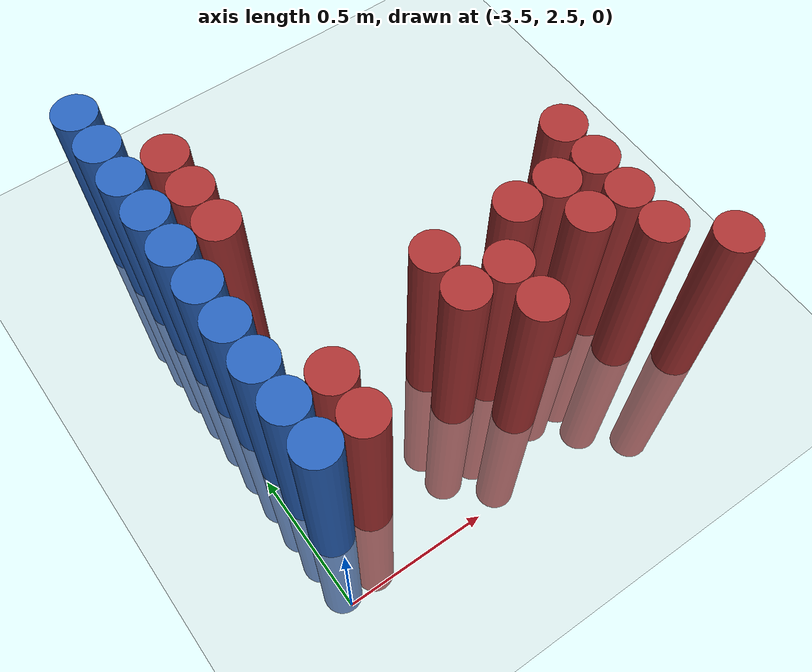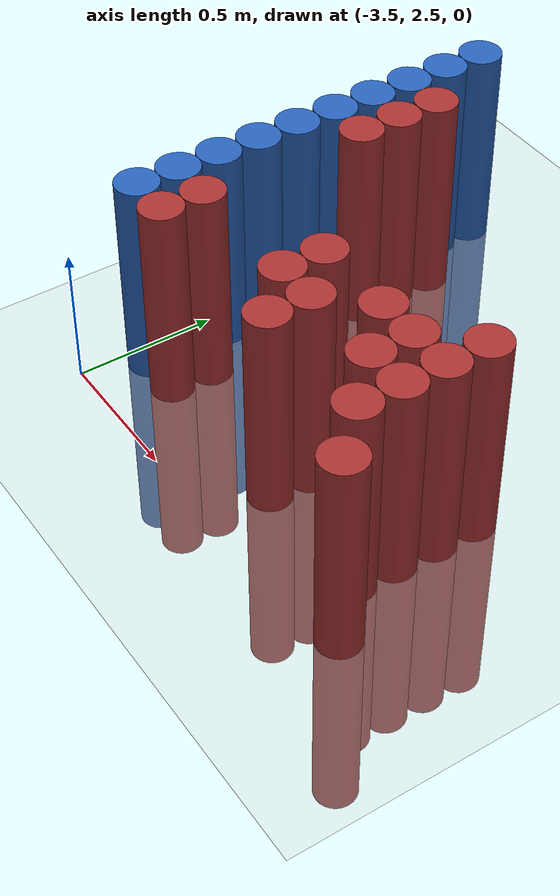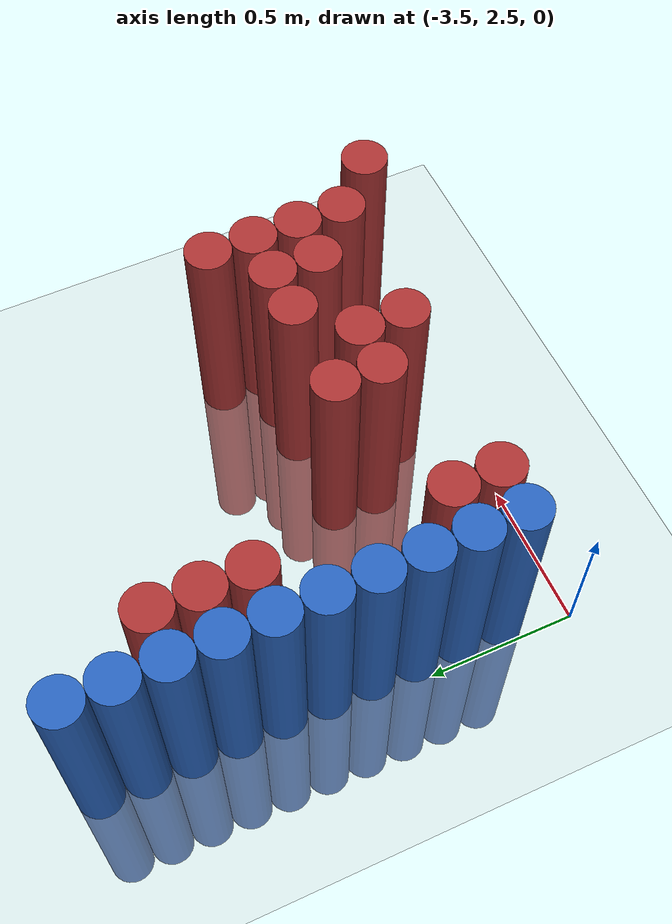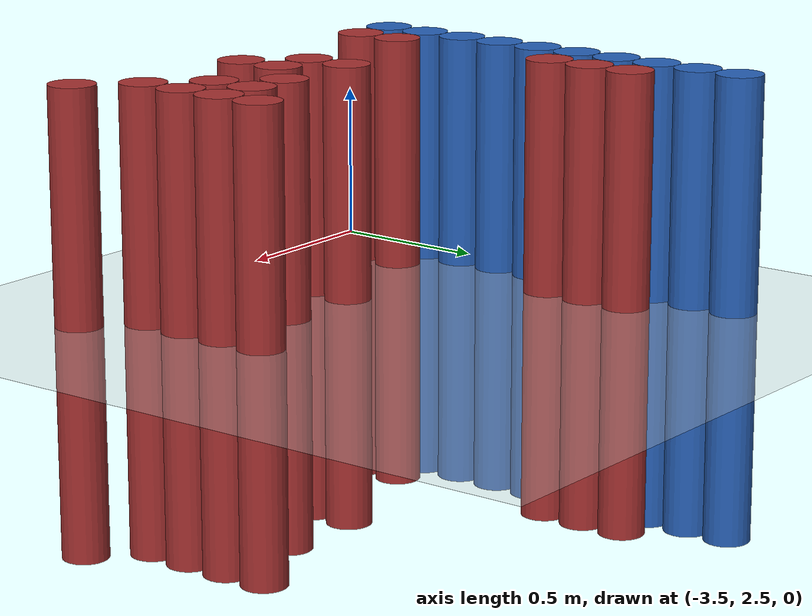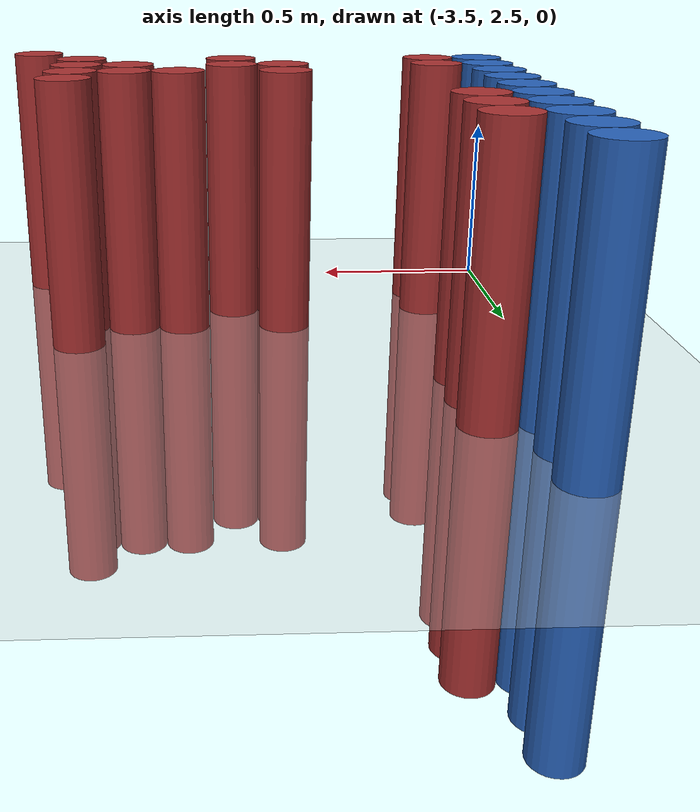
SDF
<sdf version="1.6">
 <world name="default">
  <model name="ground_plane">
   <static>1</static>
   <link name="link">
    <collision name="collision">
     <geometry><plane><normal>0 0 1</normal><size>100 100</size></plane></geometry>
     <surface><friction><ode><mu>100</mu><mu2>50</mu2></ode></friction></surface>
    </collision>
    <visual name="visual">
     <cast_shadows>0</cast_shadows>
     <geometry><plane><normal>0 0 1</normal><size>100 100</size></plane></geometry>
     <material>
      <script><uri>file://media/materials/scripts/gazebo.material</uri><name>Gazebo/Grey</name></script>
     </material>
    </visual>
   </link>
  </model>
  <model name="unit_cylinder_151">
   <static>1</static>
   <pose>-3.425000 2.725000 0.000000 0.000000 0.000000 0.000000</pose>
   <link name="link">
    <inertial>
     <mass>1</mass>
     <inertia><ixx>0.145833</ixx><ixy>0</ixy><ixz>0</ixz><iyy>0.145833</iyy><iyz>0</iyz><izz>0.125</izz></inertia>
    </inertial>
    <collision name="collision">
     <geometry><cylinder><radius>0.075000</radius><length>1.5</length></cylinder></geometry>
    </collision>
    <visual name="visual">
     <geometry><cylinder><radius>0.075000</radius><length>1.5</length></cylinder></geometry>
     <material>
      <ambient>0.152000 0.379000 0.720000 1</ambient>
      <diffuse>0.152000 0.379000 0.720000 1</diffuse>
     </material>
     <material>
      <script><name>Gazebo/Grey</name><uri>file://media/materials/scripts/gazebo.material</uri></script>
     </material>
    </visual>
   </link>
  </model>
  <model name="unit_cylinder_153">
   <static>1</static>
   <pose>-3.425000 2.875000 0.000000 0.000000 0.000000 0.000000</pose>
   <link name="link">
    <inertial>
     <mass>1</mass>
     <inertia><ixx>0.145833</ixx><ixy>0</ixy><ixz>0</ixz><iyy>0.145833</iyy><iyz>0</iyz><izz>0.125</izz></inertia>
    </inertial>
    <collision name="collision">
     <geometry><cylinder><radius>0.075000</radius><length>1.5</length></cylinder></geometry>
    </collision>
    <visual name="visual">
     <geometry><cylinder><radius>0.075000</radius><length>1.5</length></cylinder></geometry>
     <material>
      <ambient>0.152000 0.379000 0.720000 1</ambient>
      <diffuse>0.152000 0.379000 0.720000 1</diffuse>
     </material>
     <material>
      <script><name>Gazebo/Grey</name><uri>file://media/materials/scripts/gazebo.material</uri></script>
     </material>
    </visual>
   </link>
  </model>
  <model name="unit_cylinder_155">
   <static>1</static>
   <pose>-3.425000 3.025000 0.000000 0.000000 0.000000 0.000000</pose>
   <link name="link">
    <inertial>
     <mass>1</mass>
     <inertia><ixx>0.145833</ixx><ixy>0</ixy><ixz>0</ixz><iyy>0.145833</iyy><iyz>0</iyz><izz>0.125</izz></inertia>
    </inertial>
    <collision name="collision">
     <geometry><cylinder><radius>0.075000</radius><length>1.5</length></cylinder></geometry>
    </collision>
    <visual name="visual">
     <geometry><cylinder><radius>0.075000</radius><length>1.5</length></cylinder></geometry>
     <material>
      <ambient>0.152000 0.379000 0.720000 1</ambient>
      <diffuse>0.152000 0.379000 0.720000 1</diffuse>
     </material>
     <material>
      <script><name>Gazebo/Grey</name><uri>file://media/materials/scripts/gazebo.material</uri></script>
     </material>
    </visual>
   </link>
  </model>
  <model name="unit_cylinder_157">
   <static>1</static>
   <pose>-3.425000 3.175000 0.000000 0.000000 0.000000 0.000000</pose>
   <link name="link">
    <inertial>
     <mass>1</mass>
     <inertia><ixx>0.145833</ixx><ixy>0</ixy><ixz>0</ixz><iyy>0.145833</iyy><iyz>0</iyz><izz>0.125</izz></inertia>
    </inertial>
    <collision name="collision">
     <geometry><cylinder><radius>0.075000</radius><length>1.5</length></cylinder></geometry>
    </collision>
    <visual name="visual">
     <geometry><cylinder><radius>0.075000</radius><length>1.5</length></cylinder></geometry>
     <material>
      <ambient>0.152000 0.379000 0.720000 1</ambient>
      <diffuse>0.152000 0.379000 0.720000 1</diffuse>
     </material>
     <material>
      <script><name>Gazebo/Grey</name><uri>file://media/materials/scripts/gazebo.material</uri></script>
     </material>
    </visual>
   </link>
  </model>
  <model name="unit_cylinder_159">
   <static>1</static>
   <pose>-3.425000 3.325000 0.000000 0.000000 0.000000 0.000000</pose>
   <link name="link">
    <inertial>
     <mass>1</mass>
     <inertia><ixx>0.145833</ixx><ixy>0</ixy><ixz>0</ixz><iyy>0.145833</iyy><iyz>0</iyz><izz>0.125</izz></inertia>
    </inertial>
    <collision name="collision">
     <geometry><cylinder><radius>0.075000</radius><length>1.5</length></cylinder></geometry>
    </collision>
    <visual name="visual">
     <geometry><cylinder><radius>0.075000</radius><length>1.5</length></cylinder></geometry>
     <material>
      <ambient>0.152000 0.379000 0.720000 1</ambient>
      <diffuse>0.152000 0.379000 0.720000 1</diffuse>
     </material>
     <material>
      <script><name>Gazebo/Grey</name><uri>file://media/materials/scripts/gazebo.material</uri></script>
     </material>
    </visual>
   </link>
  </model>
  <model name="unit_cylinder_161">
   <static>1</static>
   <pose>-3.425000 3.475000 0.000000 0.000000 0.000000 0.000000</pose>
   <link name="link">
    <inertial>
     <mass>1</mass>
     <inertia><ixx>0.145833</ixx><ixy>0</ixy><ixz>0</ixz><iyy>0.145833</iyy><iyz>0</iyz><izz>0.125</izz></inertia>
    </inertial>
    <collision name="collision">
     <geometry><cylinder><radius>0.075000</radius><length>1.5</length></cylinder></geometry>
    </collision>
    <visual name="visual">
     <geometry><cylinder><radius>0.075000</radius><length>1.5</length></cylinder></geometry>
     <material>
      <ambient>0.152000 0.379000 0.720000 1</ambient>
      <diffuse>0.152000 0.379000 0.720000 1</diffuse>
     </material>
     <material>
      <script><name>Gazebo/Grey</name><uri>file://media/materials/scripts/gazebo.material</uri></script>
     </material>
    </visual>
   </link>
  </model>
  <model name="unit_cylinder_163">
   <static>1</static>
   <pose>-3.425000 3.625000 0.000000 0.000000 0.000000 0.000000</pose>
   <link name="link">
    <inertial>
     <mass>1</mass>
     <inertia><ixx>0.145833</ixx><ixy>0</ixy><ixz>0</ixz><iyy>0.145833</iyy><iyz>0</iyz><izz>0.125</izz></inertia>
    </inertial>
    <collision name="collision">
     <geometry><cylinder><radius>0.075000</radius><length>1.5</length></cylinder></geometry>
    </collision>
    <visual name="visual">
     <geometry><cylinder><radius>0.075000</radius><length>1.5</length></cylinder></geometry>
     <material>
      <ambient>0.152000 0.379000 0.720000 1</ambient>
      <diffuse>0.152000 0.379000 0.720000 1</diffuse>
     </material>
     <material>
      <script><name>Gazebo/Grey</name><uri>file://media/materials/scripts/gazebo.material</uri></script>
     </material>
    </visual>
   </link>
  </model>
  <model name="unit_cylinder_165">
   <static>1</static>
   <pose>-3.425000 3.775000 0.000000 0.000000 0.000000 0.000000</pose>
   <link name="link">
    <inertial>
     <mass>1</mass>
     <inertia><ixx>0.145833</ixx><ixy>0</ixy><ixz>0</ixz><iyy>0.145833</iyy><iyz>0</iyz><izz>0.125</izz></inertia>
    </inertial>
    <collision name="collision">
     <geometry><cylinder><radius>0.075000</radius><length>1.5</length></cylinder></geometry>
    </collision>
    <visual name="visual">
     <geometry><cylinder><radius>0.075000</radius><length>1.5</length></cylinder></geometry>
     <material>
      <ambient>0.152000 0.379000 0.720000 1</ambient>
      <diffuse>0.152000 0.379000 0.720000 1</diffuse>
     </material>
     <material>
      <script><name>Gazebo/Grey</name><uri>file://media/materials/scripts/gazebo.material</uri></script>
     </material>
    </visual>
   </link>
  </model>
  <model name="unit_cylinder_167">
   <static>1</static>
   <pose>-3.425000 3.925000 0.000000 0.000000 0.000000 0.000000</pose>
   <link name="link">
    <inertial>
     <mass>1</mass>
     <inertia><ixx>0.145833</ixx><ixy>0</ixy><ixz>0</ixz><iyy>0.145833</iyy><iyz>0</iyz><izz>0.125</izz></inertia>
    </inertial>
    <collision name="collision">
     <geometry><cylinder><radius>0.075000</radius><length>1.5</length></cylinder></geometry>
    </collision>
    <visual name="visual">
     <geometry><cylinder><radius>0.075000</radius><length>1.5</length></cylinder></geometry>
     <material>
      <ambient>0.152000 0.379000 0.720000 1</ambient>
      <diffuse>0.152000 0.379000 0.720000 1</diffuse>
     </material>
     <material>
      <script><name>Gazebo/Grey</name><uri>file://media/materials/scripts/gazebo.material</uri></script>
     </material>
    </visual>
   </link>
  </model>
  <model name="unit_cylinder_169">
   <static>1</static>
   <pose>-3.425000 4.075000 0.000000 0.000000 0.000000 0.000000</pose>
   <link name="link">
    <inertial>
     <mass>1</mass>
     <inertia><ixx>0.145833</ixx><ixy>0</ixy><ixz>0</ixz><iyy>0.145833</iyy><iyz>0</iyz><izz>0.125</izz></inertia>
    </inertial>
    <collision name="collision">
     <geometry><cylinder><radius>0.075000</radius><length>1.5</length></cylinder></geometry>
    </collision>
    <visual name="visual">
     <geometry><cylinder><radius>0.075000</radius><length>1.5</length></cylinder></geometry>
     <material>
      <ambient>0.152000 0.379000 0.720000 1</ambient>
      <diffuse>0.152000 0.379000 0.720000 1</diffuse>
     </material>
     <material>
      <script><name>Gazebo/Grey</name><uri>file://media/materials/scripts/gazebo.material</uri></script>
     </material>
    </visual>
   </link>
  </model>
  <model name="unit_cylinder_239">
   <static>1</static>
   <pose>-3.425000 2.725000 0.000000 0.000000 0.000000 0.000000</pose>
   <link name="link">
    <inertial>
     <mass>1</mass>
     <inertia><ixx>0.145833</ixx><ixy>0</ixy><ixz>0</ixz><iyy>0.145833</iyy><iyz>0</iyz><izz>0.125</izz></inertia>
    </inertial>
    <collision name="collision">
     <geometry><cylinder><radius>0.075000</radius><length>1.5</length></cylinder></geometry>
    </collision>
    <visual name="visual">
     <geometry><cylinder><radius>0.075000</radius><length>1.5</length></cylinder></geometry>
     <material>
      <ambient>0.152000 0.379000 0.720000 1</ambient>
      <diffuse>0.152000 0.379000 0.720000 1</diffuse>
     </material>
     <material>
      <script><name>Gazebo/Grey</name><uri>file://media/materials/scripts/gazebo.material</uri></script>
     </material>
    </visual>
   </link>
  </model>
  <model name="unit_cylinder_240">
   <static>1</static>
   <pose>-3.425000 2.875000 0.000000 0.000000 0.000000 0.000000</pose>
   <link name="link">
    <inertial>
     <mass>1</mass>
     <inertia><ixx>0.145833</ixx><ixy>0</ixy><ixz>0</ixz><iyy>0.145833</iyy><iyz>0</iyz><izz>0.125</izz></inertia>
    </inertial>
    <collision name="collision">
     <geometry><cylinder><radius>0.075000</radius><length>1.5</length></cylinder></geometry>
    </collision>
    <visual name="visual">
     <geometry><cylinder><radius>0.075000</radius><length>1.5</length></cylinder></geometry>
     <material>
      <ambient>0.152000 0.379000 0.720000 1</ambient>
      <diffuse>0.152000 0.379000 0.720000 1</diffuse>
     </material>
     <material>
      <script><name>Gazebo/Grey</name><uri>file://media/materials/scripts/gazebo.material</uri></script>
     </material>
    </visual>
   </link>
  </model>
  <model name="unit_cylinder_241">
   <static>1</static>
   <pose>-3.425000 3.025000 0.000000 0.000000 0.000000 0.000000</pose>
   <link name="link">
    <inertial>
     <mass>1</mass>
     <inertia><ixx>0.145833</ixx><ixy>0</ixy><ixz>0</ixz><iyy>0.145833</iyy><iyz>0</iyz><izz>0.125</izz></inertia>
    </inertial>
    <collision name="collision">
     <geometry><cylinder><radius>0.075000</radius><length>1.5</length></cylinder></geometry>
    </collision>
    <visual name="visual">
     <geometry><cylinder><radius>0.075000</radius><length>1.5</length></cylinder></geometry>
     <material>
      <ambient>0.152000 0.379000 0.720000 1</ambient>
      <diffuse>0.152000 0.379000 0.720000 1</diffuse>
     </material>
     <material>
      <script><name>Gazebo/Grey</name><uri>file://media/materials/scripts/gazebo.material</uri></script>
     </material>
    </visual>
   </link>
  </model>
  <model name="unit_cylinder_242">
   <static>1</static>
   <pose>-3.425000 3.175000 0.000000 0.000000 0.000000 0.000000</pose>
   <link name="link">
    <inertial>
     <mass>1</mass>
     <inertia><ixx>0.145833</ixx><ixy>0</ixy><ixz>0</ixz><iyy>0.145833</iyy><iyz>0</iyz><izz>0.125</izz></inertia>
    </inertial>
    <collision name="collision">
     <geometry><cylinder><radius>0.075000</radius><length>1.5</length></cylinder></geometry>
    </collision>
    <visual name="visual">
     <geometry><cylinder><radius>0.075000</radius><length>1.5</length></cylinder></geometry>
     <material>
      <ambient>0.152000 0.379000 0.720000 1</ambient>
      <diffuse>0.152000 0.379000 0.720000 1</diffuse>
     </material>
     <material>
      <script><name>Gazebo/Grey</name><uri>file://media/materials/scripts/gazebo.material</uri></script>
     </material>
    </visual>
   </link>
  </model>
  <model name="unit_cylinder_243">
   <static>1</static>
   <pose>-3.425000 3.325000 0.000000 0.000000 0.000000 0.000000</pose>
   <link name="link">
    <inertial>
     <mass>1</mass>
     <inertia><ixx>0.145833</ixx><ixy>0</ixy><ixz>0</ixz><iyy>0.145833</iyy><iyz>0</iyz><izz>0.125</izz></inertia>
    </inertial>
    <collision name="collision">
     <geometry><cylinder><radius>0.075000</radius><length>1.5</length></cylinder></geometry>
    </collision>
    <visual name="visual">
     <geometry><cylinder><radius>0.075000</radius><length>1.5</length></cylinder></geometry>
     <material>
      <ambient>0.152000 0.379000 0.720000 1</ambient>
      <diffuse>0.152000 0.379000 0.720000 1</diffuse>
     </material>
     <material>
      <script><name>Gazebo/Grey</name><uri>file://media/materials/scripts/gazebo.material</uri></script>
     </material>
    </visual>
   </link>
  </model>
  <model name="unit_cylinder_244">
   <static>1</static>
   <pose>-3.425000 3.475000 0.000000 0.000000 0.000000 0.000000</pose>
   <link name="link">
    <inertial>
     <mass>1</mass>
     <inertia><ixx>0.145833</ixx><ixy>0</ixy><ixz>0</ixz><iyy>0.145833</iyy><iyz>0</iyz><izz>0.125</izz></inertia>
    </inertial>
    <collision name="collision">
     <geometry><cylinder><radius>0.075000</radius><length>1.5</length></cylinder></geometry>
    </collision>
    <visual name="visual">
     <geometry><cylinder><radius>0.075000</radius><length>1.5</length></cylinder></geometry>
     <material>
      <ambient>0.152000 0.379000 0.720000 1</ambient>
      <diffuse>0.152000 0.379000 0.720000 1</diffuse>
     </material>
     <material>
      <script><name>Gazebo/Grey</name><uri>file://media/materials/scripts/gazebo.material</uri></script>
     </material>
    </visual>
   </link>
  </model>
  <model name="unit_cylinder_245">
   <static>1</static>
   <pose>-3.425000 3.625000 0.000000 0.000000 0.000000 0.000000</pose>
   <link name="link">
    <inertial>
     <mass>1</mass>
     <inertia><ixx>0.145833</ixx><ixy>0</ixy><ixz>0</ixz><iyy>0.145833</iyy><iyz>0</iyz><izz>0.125</izz></inertia>
    </inertial>
    <collision name="collision">
     <geometry><cylinder><radius>0.075000</radius><length>1.5</length></cylinder></geometry>
    </collision>
    <visual name="visual">
     <geometry><cylinder><radius>0.075000</radius><length>1.5</length></cylinder></geometry>
     <material>
      <ambient>0.152000 0.379000 0.720000 1</ambient>
      <diffuse>0.152000 0.379000 0.720000 1</diffuse>
     </material>
     <material>
      <script><name>Gazebo/Grey</name><uri>file://media/materials/scripts/gazebo.material</uri></script>
     </material>
    </visual>
   </link>
  </model>
  <model name="unit_cylinder_246">
   <static>1</static>
   <pose>-3.425000 3.775000 0.000000 0.000000 0.000000 0.000000</pose>
   <link name="link">
    <inertial>
     <mass>1</mass>
     <inertia><ixx>0.145833</ixx><ixy>0</ixy><ixz>0</ixz><iyy>0.145833</iyy><iyz>0</iyz><izz>0.125</izz></inertia>
    </inertial>
    <collision name="collision">
     <geometry><cylinder><radius>0.075000</radius><length>1.5</length></cylinder></geometry>
    </collision>
    <visual name="visual">
     <geometry><cylinder><radius>0.075000</radius><length>1.5</length></cylinder></geometry>
     <material>
      <ambient>0.152000 0.379000 0.720000 1</ambient>
      <diffuse>0.152000 0.379000 0.720000 1</diffuse>
     </material>
     <material>
      <script><name>Gazebo/Grey</name><uri>file://media/materials/scripts/gazebo.material</uri></script>
     </material>
    </visual>
   </link>
  </model>
  <model name="unit_cylinder_247">
   <static>1</static>
   <pose>-3.425000 3.925000 0.000000 0.000000 0.000000 0.000000</pose>
   <link name="link">
    <inertial>
     <mass>1</mass>
     <inertia><ixx>0.145833</ixx><ixy>0</ixy><ixz>0</ixz><iyy>0.145833</iyy><iyz>0</iyz><izz>0.125</izz></inertia>
    </inertial>
    <collision name="collision">
     <geometry><cylinder><radius>0.075000</radius><length>1.5</length></cylinder></geometry>
    </collision>
    <visual name="visual">
     <geometry><cylinder><radius>0.075000</radius><length>1.5</length></cylinder></geometry>
     <material>
      <ambient>0.152000 0.379000 0.720000 1</ambient>
      <diffuse>0.152000 0.379000 0.720000 1</diffuse>
     </material>
     <material>
      <script><name>Gazebo/Grey</name><uri>file://media/materials/scripts/gazebo.material</uri></script>
     </material>
    </visual>
   </link>
  </model>
  <model name="unit_cylinder_266">
   <static>1</static>
   <pose>-3.275000 2.725000 0.000000 0.000000 0.000000 0.000000</pose>
   <link name="link">
    <inertial>
     <mass>1</mass>
     <inertia><ixx>0.145833</ixx><ixy>0</ixy><ixz>0</ixz><iyy>0.145833</iyy><iyz>0</iyz><izz>0.125</izz></inertia>
    </inertial>
    <collision name="collision">
     <geometry><cylinder><radius>0.075000</radius><length>1.5</length></cylinder></geometry>
    </collision>
    <visual name="visual">
     <geometry><cylinder><radius>0.075000</radius><length>1.5</length></cylinder></geometry>
     <material>
      <ambient>0.648000 0.192000 0.192000 1</ambient>
      <diffuse>0.648000 0.192000 0.192000 1</diffuse>
     </material>
     <material>
      <script><name>Gazebo/Grey</name><uri>file://media/materials/scripts/gazebo.material</uri></script>
     </material>
    </visual>
   </link>
  </model>
  <model name="unit_cylinder_267">
   <static>1</static>
   <pose>-3.275000 2.875000 0.000000 0.000000 0.000000 0.000000</pose>
   <link name="link">
    <inertial>
     <mass>1</mass>
     <inertia><ixx>0.145833</ixx><ixy>0</ixy><ixz>0</ixz><iyy>0.145833</iyy><iyz>0</iyz><izz>0.125</izz></inertia>
    </inertial>
    <collision name="collision">
     <geometry><cylinder><radius>0.075000</radius><length>1.5</length></cylinder></geometry>
    </collision>
    <visual name="visual">
     <geometry><cylinder><radius>0.075000</radius><length>1.5</length></cylinder></geometry>
     <material>
      <ambient>0.648000 0.192000 0.192000 1</ambient>
      <diffuse>0.648000 0.192000 0.192000 1</diffuse>
     </material>
     <material>
      <script><name>Gazebo/Grey</name><uri>file://media/materials/scripts/gazebo.material</uri></script>
     </material>
    </visual>
   </link>
  </model>
  <model name="unit_cylinder_268">
   <static>1</static>
   <pose>-3.275000 3.475000 0.000000 0.000000 0.000000 0.000000</pose>
   <link name="link">
    <inertial>
     <mass>1</mass>
     <inertia><ixx>0.145833</ixx><ixy>0</ixy><ixz>0</ixz><iyy>0.145833</iyy><iyz>0</iyz><izz>0.125</izz></inertia>
    </inertial>
    <collision name="collision">
     <geometry><cylinder><radius>0.075000</radius><length>1.5</length></cylinder></geometry>
    </collision>
    <visual name="visual">
     <geometry><cylinder><radius>0.075000</radius><length>1.5</length></cylinder></geometry>
     <material>
      <ambient>0.648000 0.192000 0.192000 1</ambient>
      <diffuse>0.648000 0.192000 0.192000 1</diffuse>
     </material>
     <material>
      <script><name>Gazebo/Grey</name><uri>file://media/materials/scripts/gazebo.material</uri></script>
     </material>
    </visual>
   </link>
  </model>
  <model name="unit_cylinder_269">
   <static>1</static>
   <pose>-3.275000 3.625000 0.000000 0.000000 0.000000 0.000000</pose>
   <link name="link">
    <inertial>
     <mass>1</mass>
     <inertia><ixx>0.145833</ixx><ixy>0</ixy><ixz>0</ixz><iyy>0.145833</iyy><iyz>0</iyz><izz>0.125</izz></inertia>
    </inertial>
    <collision name="collision">
     <geometry><cylinder><radius>0.075000</radius><length>1.5</length></cylinder></geometry>
    </collision>
    <visual name="visual">
     <geometry><cylinder><radius>0.075000</radius><length>1.5</length></cylinder></geometry>
     <material>
      <ambient>0.648000 0.192000 0.192000 1</ambient>
      <diffuse>0.648000 0.192000 0.192000 1</diffuse>
     </material>
     <material>
      <script><name>Gazebo/Grey</name><uri>file://media/materials/scripts/gazebo.material</uri></script>
     </material>
    </visual>
   </link>
  </model>
  <model name="unit_cylinder_270">
   <static>1</static>
   <pose>-3.275000 3.775000 0.000000 0.000000 0.000000 0.000000</pose>
   <link name="link">
    <inertial>
     <mass>1</mass>
     <inertia><ixx>0.145833</ixx><ixy>0</ixy><ixz>0</ixz><iyy>0.145833</iyy><iyz>0</iyz><izz>0.125</izz></inertia>
    </inertial>
    <collision name="collision">
     <geometry><cylinder><radius>0.075000</radius><length>1.5</length></cylinder></geometry>
    </collision>
    <visual name="visual">
     <geometry><cylinder><radius>0.075000</radius><length>1.5</length></cylinder></geometry>
     <material>
      <ambient>0.648000 0.192000 0.192000 1</ambient>
      <diffuse>0.648000 0.192000 0.192000 1</diffuse>
     </material>
     <material>
      <script><name>Gazebo/Grey</name><uri>file://media/materials/scripts/gazebo.material</uri></script>
     </material>
    </visual>
   </link>
  </model>
  <model name="unit_cylinder_285">
   <static>1</static>
   <pose>-2.825000 2.875000 0.000000 0.000000 0.000000 0.000000</pose>
   <link name="link">
    <inertial>
     <mass>1</mass>
     <inertia><ixx>0.145833</ixx><ixy>0</ixy><ixz>0</ixz><iyy>0.145833</iyy><iyz>0</iyz><izz>0.125</izz></inertia>
    </inertial>
    <collision name="collision">
     <geometry><cylinder><radius>0.075000</radius><length>1.5</length></cylinder></geometry>
    </collision>
    <visual name="visual">
     <geometry><cylinder><radius>0.075000</radius><length>1.5</length></cylinder></geometry>
     <material>
      <ambient>0.648000 0.192000 0.192000 1</ambient>
      <diffuse>0.648000 0.192000 0.192000 1</diffuse>
     </material>
     <material>
      <script><name>Gazebo/Grey</name><uri>file://media/materials/scripts/gazebo.material</uri></script>
     </material>
    </visual>
   </link>
  </model>
  <model name="unit_cylinder_286">
   <static>1</static>
   <pose>-2.825000 3.025000 0.000000 0.000000 0.000000 0.000000</pose>
   <link name="link">
    <inertial>
     <mass>1</mass>
     <inertia><ixx>0.145833</ixx><ixy>0</ixy><ixz>0</ixz><iyy>0.145833</iyy><iyz>0</iyz><izz>0.125</izz></inertia>
    </inertial>
    <collision name="collision">
     <geometry><cylinder><radius>0.075000</radius><length>1.5</length></cylinder></geometry>
    </collision>
    <visual name="visual">
     <geometry><cylinder><radius>0.075000</radius><length>1.5</length></cylinder></geometry>
     <material>
      <ambient>0.648000 0.192000 0.192000 1</ambient>
      <diffuse>0.648000 0.192000 0.192000 1</diffuse>
     </material>
     <material>
      <script><name>Gazebo/Grey</name><uri>file://media/materials/scripts/gazebo.material</uri></script>
     </material>
    </visual>
   </link>
  </model>
  <model name="unit_cylinder_295">
   <static>1</static>
   <pose>-2.675000 2.725000 0.000000 0.000000 0.000000 0.000000</pose>
   <link name="link">
    <inertial>
     <mass>1</mass>
     <inertia><ixx>0.145833</ixx><ixy>0</ixy><ixz>0</ixz><iyy>0.145833</iyy><iyz>0</iyz><izz>0.125</izz></inertia>
    </inertial>
    <collision name="collision">
     <geometry><cylinder><radius>0.075000</radius><length>1.5</length></cylinder></geometry>
    </collision>
    <visual name="visual">
     <geometry><cylinder><radius>0.075000</radius><length>1.5</length></cylinder></geometry>
     <material>
      <ambient>0.648000 0.192000 0.192000 1</ambient>
      <diffuse>0.648000 0.192000 0.192000 1</diffuse>
     </material>
     <material>
      <script><name>Gazebo/Grey</name><uri>file://media/materials/scripts/gazebo.material</uri></script>
     </material>
    </visual>
   </link>
  </model>
  <model name="unit_cylinder_296">
   <static>1</static>
   <pose>-2.675000 2.875000 0.000000 0.000000 0.000000 0.000000</pose>
   <link name="link">
    <inertial>
     <mass>1</mass>
     <inertia><ixx>0.145833</ixx><ixy>0</ixy><ixz>0</ixz><iyy>0.145833</iyy><iyz>0</iyz><izz>0.125</izz></inertia>
    </inertial>
    <collision name="collision">
     <geometry><cylinder><radius>0.075000</radius><length>1.5</length></cylinder></geometry>
    </collision>
    <visual name="visual">
     <geometry><cylinder><radius>0.075000</radius><length>1.5</length></cylinder></geometry>
     <material>
      <ambient>0.648000 0.192000 0.192000 1</ambient>
      <diffuse>0.648000 0.192000 0.192000 1</diffuse>
     </material>
     <material>
      <script><name>Gazebo/Grey</name><uri>file://media/materials/scripts/gazebo.material</uri></script>
     </material>
    </visual>
   </link>
  </model>
  <model name="unit_cylinder_303">
   <static>1</static>
   <pose>-2.525000 3.025000 0.000000 0.000000 0.000000 0.000000</pose>
   <link name="link">
    <inertial>
     <mass>1</mass>
     <inertia><ixx>0.145833</ixx><ixy>0</ixy><ixz>0</ixz><iyy>0.145833</iyy><iyz>0</iyz><izz>0.125</izz></inertia>
    </inertial>
    <collision name="collision">
     <geometry><cylinder><radius>0.075000</radius><length>1.5</length></cylinder></geometry>
    </collision>
    <visual name="visual">
     <geometry><cylinder><radius>0.075000</radius><length>1.5</length></cylinder></geometry>
     <material>
      <ambient>0.648000 0.192000 0.192000 1</ambient>
      <diffuse>0.648000 0.192000 0.192000 1</diffuse>
     </material>
     <material>
      <script><name>Gazebo/Grey</name><uri>file://media/materials/scripts/gazebo.material</uri></script>
     </material>
    </visual>
   </link>
  </model>
  <model name="unit_cylinder_310">
   <static>1</static>
   <pose>-2.375000 2.875000 0.000000 0.000000 0.000000 0.000000</pose>
   <link name="link">
    <inertial>
     <mass>1</mass>
     <inertia><ixx>0.145833</ixx><ixy>0</ixy><ixz>0</ixz><iyy>0.145833</iyy><iyz>0</iyz><izz>0.125</izz></inertia>
    </inertial>
    <collision name="collision">
     <geometry><cylinder><radius>0.075000</radius><length>1.5</length></cylinder></geometry>
    </collision>
    <visual name="visual">
     <geometry><cylinder><radius>0.075000</radius><length>1.5</length></cylinder></geometry>
     <material>
      <ambient>0.648000 0.192000 0.192000 1</ambient>
      <diffuse>0.648000 0.192000 0.192000 1</diffuse>
     </material>
     <material>
      <script><name>Gazebo/Grey</name><uri>file://media/materials/scripts/gazebo.material</uri></script>
     </material>
    </visual>
   </link>
  </model>
  <model name="unit_cylinder_311">
   <static>1</static>
   <pose>-2.375000 3.025000 0.000000 0.000000 0.000000 0.000000</pose>
   <link name="link">
    <inertial>
     <mass>1</mass>
     <inertia><ixx>0.145833</ixx><ixy>0</ixy><ixz>0</ixz><iyy>0.145833</iyy><iyz>0</iyz><izz>0.125</izz></inertia>
    </inertial>
    <collision name="collision">
     <geometry><cylinder><radius>0.075000</radius><length>1.5</length></cylinder></geometry>
    </collision>
    <visual name="visual">
     <geometry><cylinder><radius>0.075000</radius><length>1.5</length></cylinder></geometry>
     <material>
      <ambient>0.648000 0.192000 0.192000 1</ambient>
      <diffuse>0.648000 0.192000 0.192000 1</diffuse>
     </material>
     <material>
      <script><name>Gazebo/Grey</name><uri>file://media/materials/scripts/gazebo.material</uri></script>
     </material>
    </visual>
   </link>
  </model>
  <model name="unit_cylinder_312">
   <static>1</static>
   <pose>-2.225000 2.725000 0.000000 0.000000 0.000000 0.000000</pose>
   <link name="link">
    <inertial>
     <mass>1</mass>
     <inertia><ixx>0.145833</ixx><ixy>0</ixy><ixz>0</ixz><iyy>0.145833</iyy><iyz>0</iyz><izz>0.125</izz></inertia>
    </inertial>
    <collision name="collision">
     <geometry><cylinder><radius>0.075000</radius><length>1.5</length></cylinder></geometry>
    </collision>
    <visual name="visual">
     <geometry><cylinder><radius>0.075000</radius><length>1.5</length></cylinder></geometry>
     <material>
      <ambient>0.648000 0.192000 0.192000 1</ambient>
      <diffuse>0.648000 0.192000 0.192000 1</diffuse>
     </material>
     <material>
      <script><name>Gazebo/Grey</name><uri>file://media/materials/scripts/gazebo.material</uri></script>
     </material>
    </visual>
   </link>
  </model>
  <model name="unit_cylinder_313">
   <static>1</static>
   <pose>-2.225000 2.875000 0.000000 0.000000 0.000000 0.000000</pose>
   <link name="link">
    <inertial>
     <mass>1</mass>
     <inertia><ixx>0.145833</ixx><ixy>0</ixy><ixz>0</ixz><iyy>0.145833</iyy><iyz>0</iyz><izz>0.125</izz></inertia>
    </inertial>
    <collision name="collision">
     <geometry><cylinder><radius>0.075000</radius><length>1.5</length></cylinder></geometry>
    </collision>
    <visual name="visual">
     <geometry><cylinder><radius>0.075000</radius><length>1.5</length></cylinder></geometry>
     <material>
      <ambient>0.648000 0.192000 0.192000 1</ambient>
      <diffuse>0.648000 0.192000 0.192000 1</diffuse>
     </material>
     <material>
      <script><name>Gazebo/Grey</name><uri>file://media/materials/scripts/gazebo.material</uri></script>
     </material>
    </visual>
   </link>
  </model>
  <model name="unit_cylinder_314">
   <static>1</static>
   <pose>-2.225000 3.025000 0.000000 0.000000 0.000000 0.000000</pose>
   <link name="link">
    <inertial>
     <mass>1</mass>
     <inertia><ixx>0.145833</ixx><ixy>0</ixy><ixz>0</ixz><iyy>0.145833</iyy><iyz>0</iyz><izz>0.125</izz></inertia>
    </inertial>
    <collision name="collision">
     <geometry><cylinder><radius>0.075000</radius><length>1.5</length></cylinder></geometry>
    </collision>
    <visual name="visual">
     <geometry><cylinder><radius>0.075000</radius><length>1.5</length></cylinder></geometry>
     <material>
      <ambient>0.648000 0.192000 0.192000 1</ambient>
      <diffuse>0.648000 0.192000 0.192000 1</diffuse>
     </material>
     <material>
      <script><name>Gazebo/Grey</name><uri>file://media/materials/scripts/gazebo.material</uri></script>
     </material>
    </visual>
   </link>
  </model>
  <model name="unit_cylinder_315">
   <static>1</static>
   <pose>-2.225000 3.175000 0.000000 0.000000 0.000000 0.000000</pose>
   <link name="link">
    <inertial>
     <mass>1</mass>
     <inertia><ixx>0.145833</ixx><ixy>0</ixy><ixz>0</ixz><iyy>0.145833</iyy><iyz>0</iyz><izz>0.125</izz></inertia>
    </inertial>
    <collision name="collision">
     <geometry><cylinder><radius>0.075000</radius><length>1.5</length></cylinder></geometry>
    </collision>
    <visual name="visual">
     <geometry><cylinder><radius>0.075000</radius><length>1.5</length></cylinder></geometry>
     <material>
      <ambient>0.648000 0.192000 0.192000 1</ambient>
      <diffuse>0.648000 0.192000 0.192000 1</diffuse>
     </material>
     <material>
      <script><name>Gazebo/Grey</name><uri>file://media/materials/scripts/gazebo.material</uri></script>
     </material>
    </visual>
   </link>
  </model>
  <model name="unit_cylinder_316">
   <static>1</static>
   <pose>-2.075000 2.575000 0.000000 0.000000 0.000000 0.000000</pose>
   <link name="link">
    <inertial>
     <mass>1</mass>
     <inertia><ixx>0.145833</ixx><ixy>0</ixy><ixz>0</ixz><iyy>0.145833</iyy><iyz>0</iyz><izz>0.125</izz></inertia>
    </inertial>
    <collision name="collision">
     <geometry><cylinder><radius>0.075000</radius><length>1.5</length></cylinder></geometry>
    </collision>
    <visual name="visual">
     <geometry><cylinder><radius>0.075000</radius><length>1.5</length></cylinder></geometry>
     <material>
      <ambient>0.648000 0.192000 0.192000 1</ambient>
      <diffuse>0.648000 0.192000 0.192000 1</diffuse>
     </material>
     <material>
      <script><name>Gazebo/Grey</name><uri>file://media/materials/scripts/gazebo.material</uri></script>
     </material>
    </visual>
   </link>
  </model>
 </world>
</sdf>
